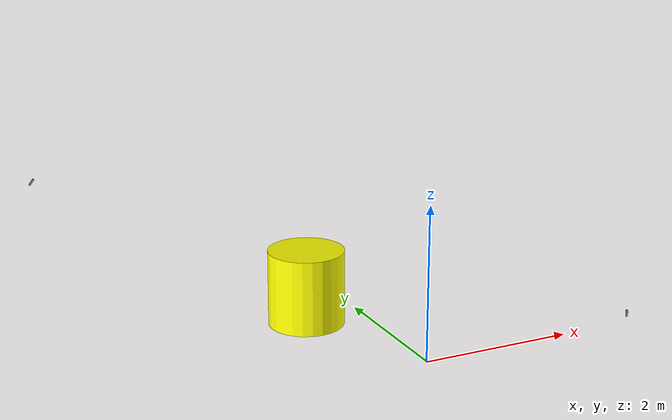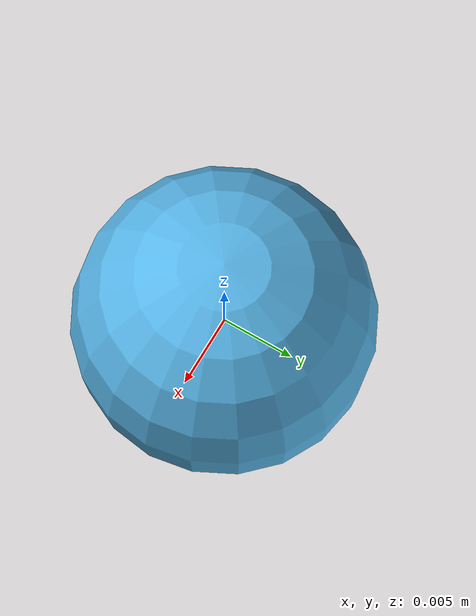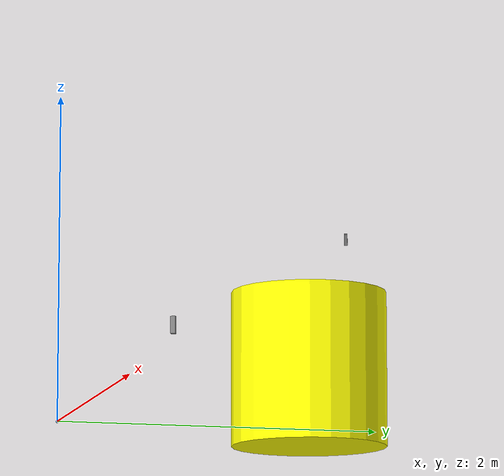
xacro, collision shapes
<?xml version="1.0"?>
<robot name="cam_system" xmlns:xacro="http://ros.org/wiki/xacro">

<!--========================================== Constants ============================================-->

    <xacro:property name="M_PI"   value="3.14159265359" />

<!--========================================== Materials ============================================-->

<material name="Neobotix/Black">
    <color rgba="0.0 0.0 0.0 1.0"/>
</material>

<material name="Neobotix/Blue">
    <color rgba="0.0 0.0 0.8 1.0"/>
</material>

<material name="Neobotix/Green">
    <color rgba="0.0 0.8 0.0 1.0"/>
</material>

<material name="Neobotix/Grey">
    <color rgba="0.7 0.7 0.7 1.0"/>
</material>

<material name="Neobotix/Grey2">
    <color rgba="0.9 0.9 0.9 1.0"/>
</material>

<material name="Neobotix/Red">
    <color rgba="0.8 0.0 0.0 1.0"/>
</material>

<material name="Neobotix/White">
    <color rgba="1.0 1.0 1.0 1.0"/>
</material>

<material name="Neobotix/Yellow">
    <color rgba="1.0 1.0 0 1"/>
</material>

<material name="Neobotix/Aluminum">
    <color rgba="0.5 0.5 0.5 1"/>
</material>

<!--==================================== Gazebo Link References =====================================-->

<gazebo reference="base_link">
    <gravity>true</gravity>
    <self_collide>false</self_collide>
    <material value="Gazebo/Grey"/>
</gazebo>

<gazebo reference="base_footprint">
    <gravity>true</gravity>
    <self_collide>false</self_collide>
    <material value="Gazebo/Grey"/>
</gazebo>

<!--========================================= Base Macro ============================================-->

<!--The root link base_link has an inertia specified in the URDF,
    but KDL does not support a root link with an inertia. As a
    workaround, you can add an extra base_footprint link to your URDF. -->
<link name="base_footprint" />

<link name="base_link">
    <visual>
        <geometry>
            <sphere radius="0.01"/>
        </geometry>
        <origin xyz="0 0 0" rpy="0 0 0" />
    </visual>
    <collision>
        <geometry>
            <sphere radius="0.01"/>
        </geometry>
        <origin xyz="0 0 0" rpy="0 0 0" />
    </collision>
    <inertial>
        <mass value="1" />
        <origin xyz="0 0 0" rpy="0 0 0"/>
        <inertia ixx="48167" ixy="0.00" ixz="0.00"
                 iyx="0.00" iyy="48167" iyz="0.00"
                 izx="0.00" izy="0.00" izz="48167"/>
    </inertial>
    <static> true </static>
</link>

<joint name="base_footprint_joint" type="fixed">
   <parent link="base_footprint"/>
   <child  link="base_link"/>
   <origin xyz="0 0 0" rpy="0 0 0"/>
</joint>

<!-- Camera 1 -->
<link name="camera_1_link">
    <visual>
        <origin xyz="0.0149 0.0 0.0125" rpy="${M_PI/2} 0 ${M_PI/2}"/>
        <geometry>
            <mesh filename="package://realsense2_description/meshes/d435.dae" />
        </geometry>
        <material name="Neobotix/Aluminum"/>
    </visual>
    <collision>
        <origin xyz="0.0149 0.0 0.0125" rpy="${M_PI/2} 0 ${M_PI/2}"/>
        <geometry>
            <box size="0.02505 0.09 0.025"/>
        </geometry>
    </collision>
    <inertial>
        <mass value="0.564" />
        <origin xyz="0.0149 0.0 0.0125" rpy="${M_PI/2} 0 ${M_PI/2}"/>
        <inertia ixx="0.003881243" ixy="0.0" ixz="0.0" iyy="0.000498940" iyz="0.0" izz="0.003879257" />
    </inertial>
</link>

<joint name="camera_1_joint" type="fixed">
    <origin xyz="3 0 0.1" rpy="0 0 ${8.5*M_PI/10}"/>
    <axis xyz="0 1 0"/>
    <parent link="base_link"/>
    <child link="camera_1_link"/>
</joint>

<link name="camera_1_depth_frame"/>

<joint name="camera_1_depth_frame_joint" type="fixed">
    <origin xyz="0 0 0" rpy="${-M_PI/2} 0 ${-M_PI/2}" />
    <parent link="camera_1_link" />
    <child link="camera_1_depth_frame" />
</joint>

<gazebo reference="camera_1_link">
    <sensor type="depth" name="camera_1">
        <visualize>true</visualize>
        <update_rate>24</update_rate>
        <camera>
            <horizontal_fov>1.3962634</horizontal_fov>
            <image>
                <format>B8G8R8</format>
                    <!-- HD 1080 x 720 -->
                    <!-- SD  640 x 480 -->
                    <!-- LD  320 x 240 -->
                <width>1080</width>
                <height>720</height>
            </image>
            <clip>
                <near>0.15</near>
                <far>20</far>
            </clip>
            <noise>
                <type>gaussian</type>
                <mean>0.0</mean>
                <stddev>0.007</stddev>
            </noise>
        </camera>
        <plugin name="sensor_d435_controller" filename="libgazebo_ros_openni_kinect.so">
            <baseline>0.2</baseline>
            <alwaysOn>true</alwaysOn>
            <updateRate>0.0</updateRate>
            <cameraName>camera_1</cameraName>
            <imageTopicName>/camera_1/image_raw</imageTopicName>
            <cameraInfoTopicName>/camera_1/color/camera_info</cameraInfoTopicName>
            <depthImageTopicName>/camera_1/depth/image_rect_raw</depthImageTopicName>
            <depthImageInfoTopicName>/camera_1/depth/camera_info</depthImageInfoTopicName>
            <pointCloudTopicName>/camera_1/depth/points</pointCloudTopicName>
            <frameName>camera_1_depth_frame</frameName>
            <pointCloudCutoff>0.0</pointCloudCutoff>
            <distortionK1>0.00000001</distortionK1>
            <distortionK2>0.00000001</distortionK2>
            <distortionK3>0.00000001</distortionK3>
            <distortionT1>0.00000001</distortionT1>
            <distortionT2>0.00000001</distortionT2>
            <CxPrime>0</CxPrime>
            <Cx>0</Cx>
            <Cy>0</Cy>
            <focalLength>0.0</focalLength>
            <hackBaseline>0.0</hackBaseline>
        </plugin>
    </sensor>
</gazebo>

<!-- Camera 2 -->
<link name="camera_2_link">
    <visual>
        <origin xyz="0.0149 0.0 0.0125" rpy="${M_PI/2} 0 ${M_PI/2}"/>
        <geometry>
            <mesh filename="package://realsense2_description/meshes/d435.dae" />
        </geometry>
        <material name="Neobotix/Aluminum"/>
    </visual>
    <collision>
        <origin xyz="0.0149 0.0 0.0125" rpy="${M_PI/2} 0 ${M_PI/2}"/>
        <geometry>
            <box size="0.02505 0.09 0.025"/>
        </geometry>
    </collision>
    <inertial>
        <mass value="0.564"/>
        <origin xyz="0.0149 0.0 0.0125" rpy="${M_PI/2} 0 ${M_PI/2}"/>
        <inertia ixx="0.003881243" ixy="0.0" ixz="0.0" iyy="0.000498940" iyz="0.0" izz="0.003879257" />
    </inertial>
</link>

<joint name="camera_2_joint" type="fixed">
    <origin xyz="-4 3 2" rpy="0 ${2*M_PI/10} ${-1*M_PI/10}"/>
    <axis xyz="0 0 1"/>
    <parent link="base_link"/>
    <child link="camera_2_link"/>
</joint>

<link name="camera_2_depth_frame"/>

<joint name="camera_2_depth_frame_joint" type="fixed">
    <origin xyz="0 0 0" rpy="${-M_PI/2} 0 ${-M_PI/2}" />
    <parent link="camera_2_link" />
    <child link="camera_2_depth_frame" />
</joint>

<gazebo reference="camera_2_link">
    <sensor type="depth" name="camera_2">
        <visualize>true</visualize>
        <update_rate>24</update_rate>
        <camera>
            <horizontal_fov>1.3962634</horizontal_fov>
            <image>
                <format>B8G8R8</format>
                    <!-- HD 1080 x 720 -->
                    <!-- SD  640 x 480 -->
                    <!-- LD  320 x 240 -->
                <width>1080</width>
                <height>720</height>
            </image>
            <clip>
                <near>0.15</near>
                <far>20</far>
            </clip>
            <noise>
                <type>gaussian</type>
                <mean>0.0</mean>
                <stddev>0.007</stddev>
            </noise>
        </camera>
        <plugin name="sensor_d435_controller" filename="libgazebo_ros_openni_kinect.so">
            <baseline>0.2</baseline>
            <alwaysOn>true</alwaysOn>
            <updateRate>0.0</updateRate>
            <cameraName>camera_2</cameraName>
            <imageTopicName>/camera_2/image_raw</imageTopicName>
            <cameraInfoTopicName>/camera_2/color/camera_info</cameraInfoTopicName>
            <depthImageTopicName>/camera_2/depth/image_rect_raw</depthImageTopicName>
            <depthImageInfoTopicName>/camera_2/depth/camera_info</depthImageInfoTopicName>
            <pointCloudTopicName>/camera_2/depth/points</pointCloudTopicName>
            <frameName>camera_2_depth_frame</frameName>
            <pointCloudCutoff>0.0</pointCloudCutoff>
            <distortionK1>0.00000001</distortionK1>
            <distortionK2>0.00000001</distortionK2>
            <distortionK3>0.00000001</distortionK3>
            <distortionT1>0.00000001</distortionT1>
            <distortionT2>0.00000001</distortionT2>
            <CxPrime>0</CxPrime>
            <Cx>0</Cx>
            <Cy>0</Cy>
            <focalLength>0.0</focalLength>
            <hackBaseline>0.0</hackBaseline>
        </plugin>
    </sensor>
</gazebo>

<!-- Additional objects for experiments -->

<link name="unit_cylinder">
    <visual>
        <origin xyz="0 0 0" rpy="0 0 0"/>
        <geometry>
            <cylinder length="1" radius="0.5"/>
        </geometry>
        <material name="Neobotix/Yellow"/>
    </visual>
    <collision>
        <origin xyz="0 0 0" rpy="0 0 0"/>
        <geometry>
            <cylinder length="1" radius="0.5"/>
        </geometry>
    </collision>
    <inertial>
        <mass value="1" />
        <origin xyz="0 0 0" rpy="0 0 0"/>
        <inertia ixx="0.145833" ixy="0.0" ixz="0.0" iyy="0.145833" iyz="0.0" izz="0.125" />
    </inertial>
</link>

<joint name="unit_cylinder_link" type="fixed">
    <origin xyz="-0.795229 1.8 0.5" rpy="0 0 0"/>
    <parent link="base_link"/>
    <child link="unit_cylinder"/>
</joint>

</robot>
